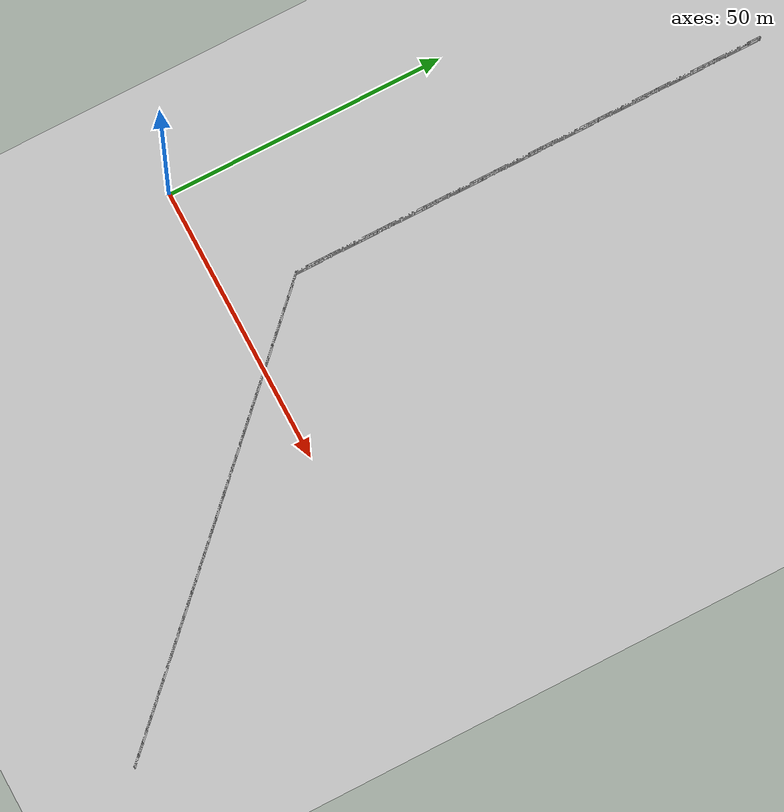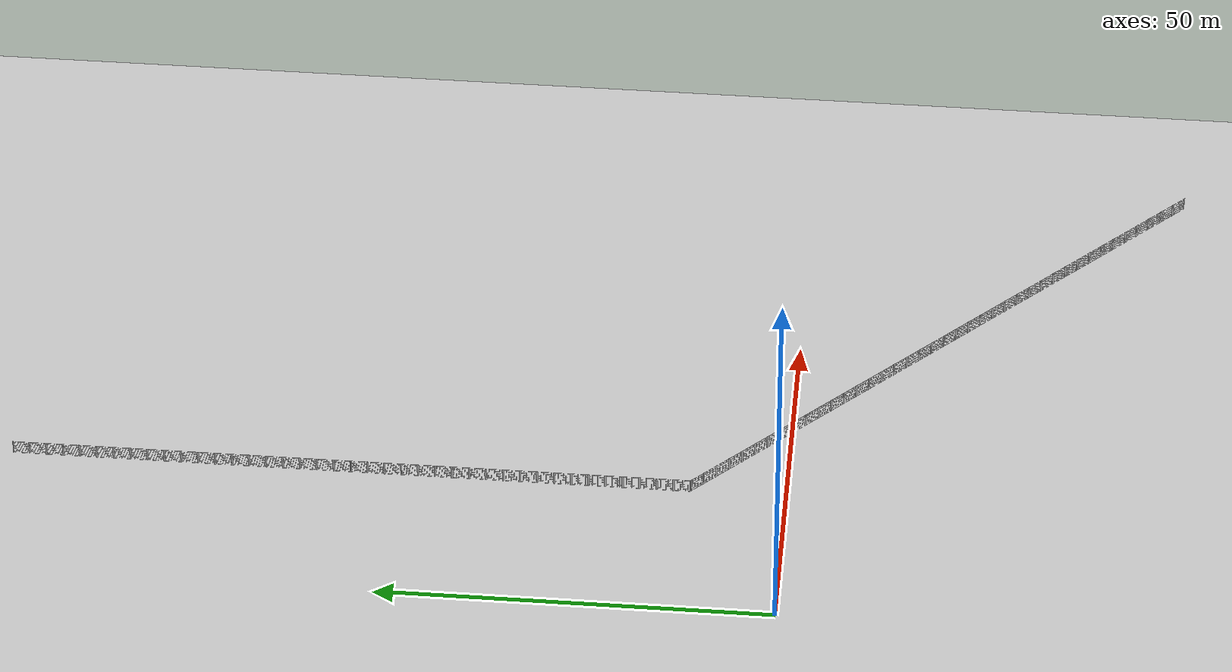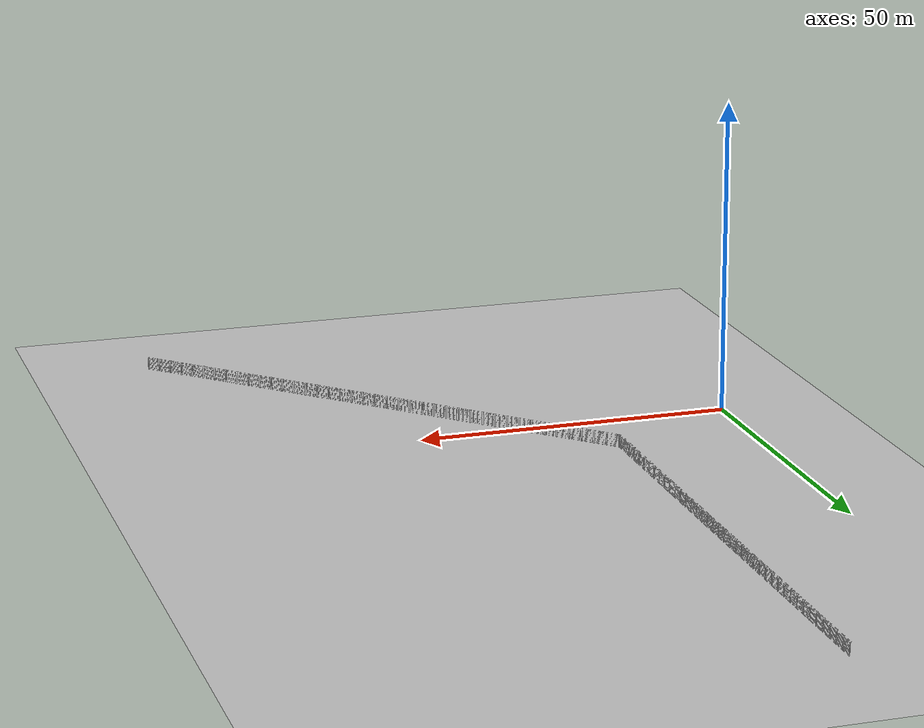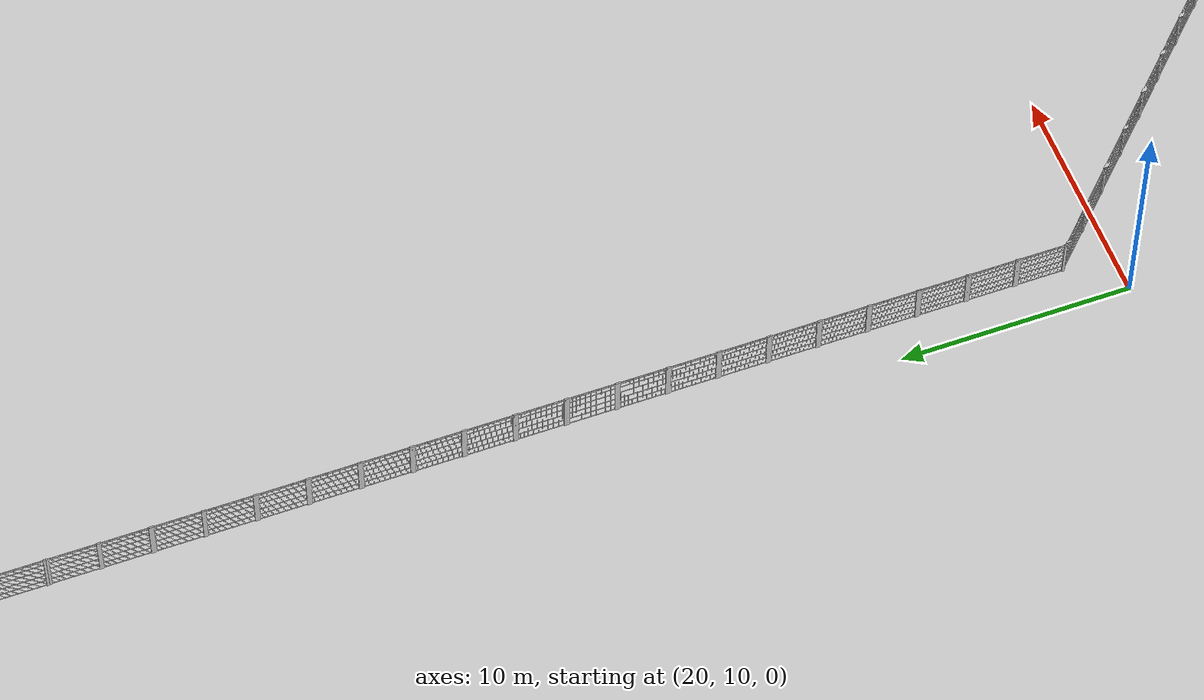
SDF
<sdf version="1.5">
 <world name="default">
  <scene><shadows>0</shadows><grid>0</grid><origin_visual>0</origin_visual></scene>
  <include><uri>model://sun</uri></include>
  <include><uri>model://ground_plane</uri></include>
  <include><uri>model://asphalt_plane</uri></include>
  <physics name="default_physics" default="0" type="ode">
   <gravity>0 0 -9.8066</gravity>
   <ode>
    <solver>
     <type>quick</type>
     <iters>10</iters>
     <sor>1.3</sor>
     <use_dynamic_moi_rescaling>0</use_dynamic_moi_rescaling>
    </solver>
    <constraints>
     <cfm>0</cfm>
     <erp>0.2</erp>
     <contact_max_correcting_vel>100</contact_max_correcting_vel>
     <contact_surface_layer>0.001</contact_surface_layer>
    </constraints>
   </ode>
   <max_step_size>0.004</max_step_size>
   <real_time_factor>1</real_time_factor>
   <real_time_update_rate>250</real_time_update_rate>
   <magnetic_field>6.0e-6 2.3e-5 -4.2e-5</magnetic_field>
  </physics>
  <model name="fence_long_0">
   <pose>67.49 -33.51 0 0 0 2.3561</pose>
   <static>true</static>
   <link name="body">
    <visual name="visual">
     <geometry><mesh><uri>model://rotors_description/meshes/fence_long.dae</uri></mesh></geometry>
    </visual>
   </link>
  </model>
  <model name="fence_long_1">
   <pose>37.01 -3.03 0 0 0 2.3561</pose>
   <static>true</static>
   <link name="body">
    <visual name="visual">
     <geometry><mesh><uri>model://rotors_description/meshes/fence_long.dae</uri></mesh></geometry>
    </visual>
   </link>
  </model>
  <model name="fence_long_2">
   <pose>21.8 76.9 0 0 0 1.5707</pose>
   <static>true</static>
   <link name="body">
    <visual name="visual">
     <geometry><mesh><uri>model://rotors_description/meshes/fence_long.dae</uri></mesh></geometry>
    </visual>
   </link>
  </model>
  <model name="fence_long_3">
   <pose>21.8 33.78 0 0 0 1.5707</pose>
   <static>true</static>
   <link name="body">
    <visual name="visual">
     <geometry><mesh><uri>model://rotors_description/meshes/fence_long.dae</uri></mesh></geometry>
    </visual>
   </link>
  </model>
 </world>
</sdf>
